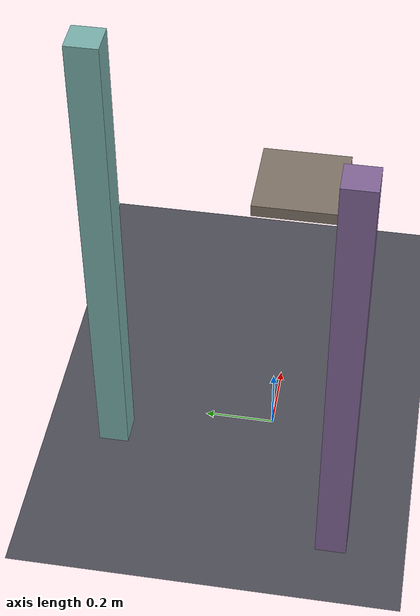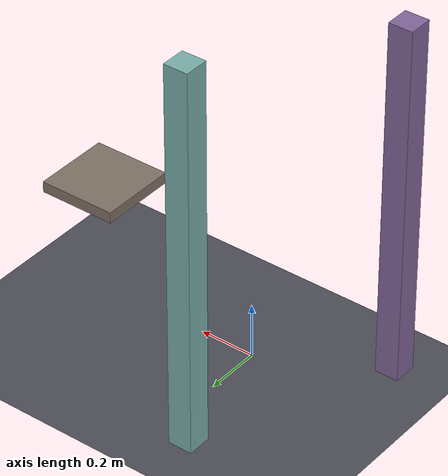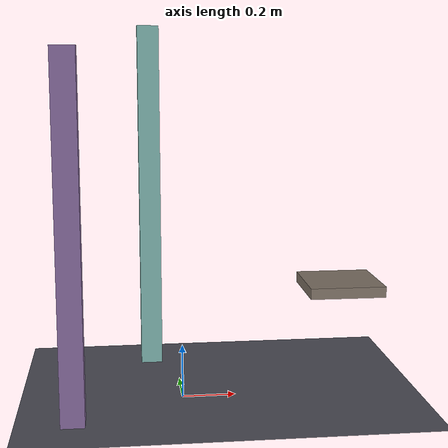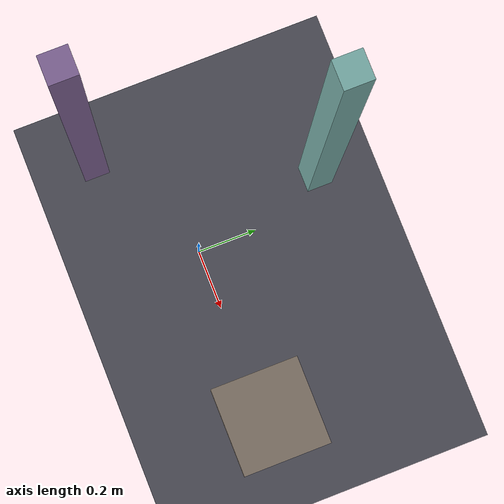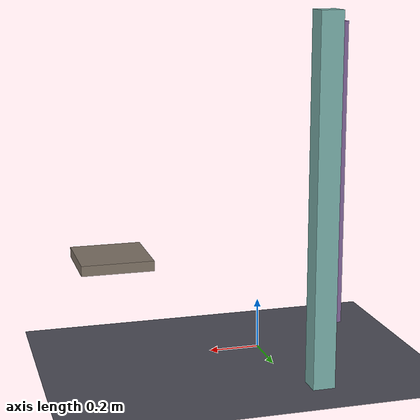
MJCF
<mujoco model="pillar_avoid_0">
  <compiler angle="radian" autolimits="true" boundmass="0" balanceinertia="true"/>
  <option impratio="10" gravity="0 0 -9.8" integrator="implicitfast" cone="elliptic" jacobian="sparse" noslip_iterations="4">
    <flag multiccd="enable" contact="enable" warmstart="enable"/>
  </option>
  <size njmax="6000" nconmax="6000"/>
  <visual><global offwidth="1280" offheight="720"/><map znear="0.001"/>
    <headlight ambient="0.45 0.45 0.45" diffuse="0.6 0.6 0.6"/></visual>
  <worldbody>
    <light pos="0.4 0.4 3" dir="0 0 -1" diffuse="0.7 0.7 0.7"/>
    <!-- Obstacle-avoidance variant 0: 2 tall PHYSICAL pillars; placements blocking >10%
         of exo-camera sightlines to the arm excluded (training view preserved). -->
    <body name="pillars" pos="0 0 0"><geom name="floor" type="plane" size="5 5 0.1" pos="0 0 0" rgba="0.30 0.30 0.34 1" contype="8" conaffinity="15"/><geom name="obj_pad" type="box" pos="0.60 0 0.42" size="0.14 0.14 0.02" rgba="0.5 0.45 0.4 1" contype="8" conaffinity="15"/><geom name="pillar_4" type="box" pos="-0.101 0.454 0.697" size="0.043 0.043 0.697" contype="8" conaffinity="15" rgba="0.48 0.69 0.67 1"/><geom name="pillar_5" type="box" pos="-0.400 -0.223 0.654" size="0.043 0.043 0.654" contype="8" conaffinity="15" rgba="0.51 0.40 0.60 1"/></body>
  </worldbody>
</mujoco>
